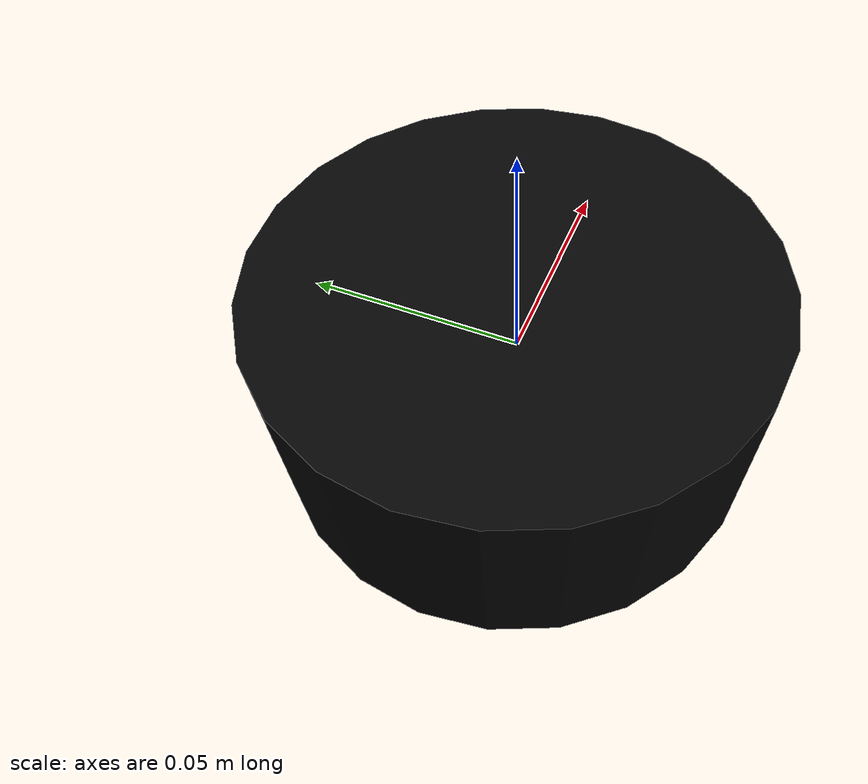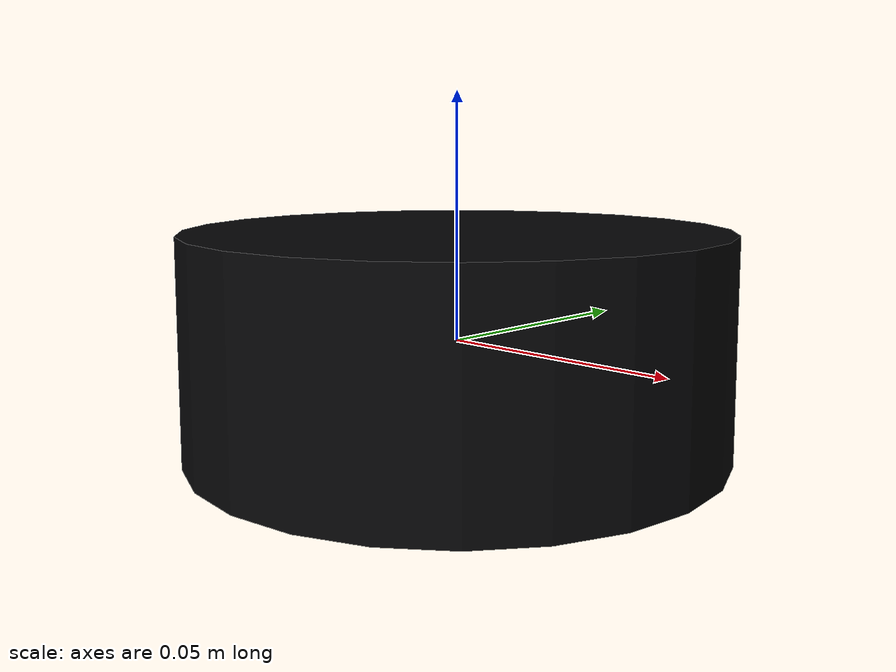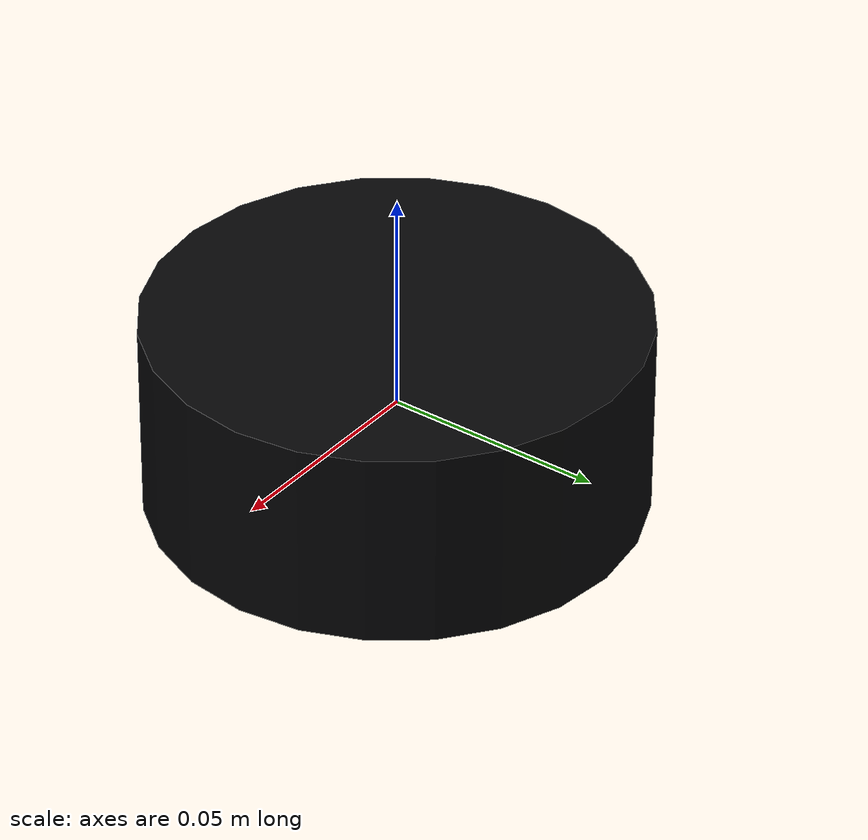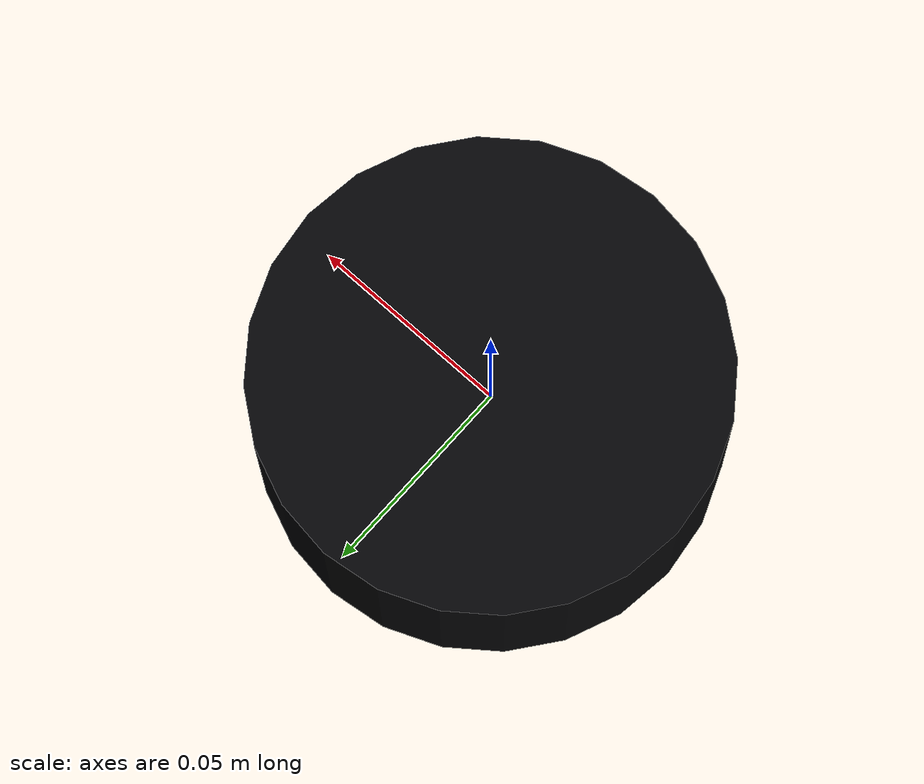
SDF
<?xml version="1.0"?>
<sdf version="1.10">
  <model name="lidar_downward_sensor_only">
    <static>false</static>
    <self_collide>false</self_collide>
    <link name="sensor_link">
      <gravity>false</gravity>
      <kinematic>true</kinematic>
      <visual name="lidar_body">
        <pose>0 0 0 0 0 0</pose>
        <geometry>
          <cylinder>
            <radius>0.055</radius>
            <length>0.045</length>
          </cylinder>
        </geometry>
        <material>
          <ambient>0.02 0.02 0.025 1</ambient>
          <diffuse>0.02 0.02 0.025 1</diffuse>
          <specular>0.15 0.15 0.15 1</specular>
        </material>
      </visual>
      <sensor name="downward_lidar" type="gpu_lidar">
        <!-- 传感器坐标系向下安装：扫描平面平行地面，用于观察无人机下方障碍物距离。 -->
        <pose>0 0 0 0 1.57079632679 0</pose>
        <always_on>1</always_on>
        <update_rate>20</update_rate>
        <visualize>true</visualize>
        <topic>/lidar/scan</topic>
        <lidar>
          <scan>
            <horizontal>
              <samples>360</samples>
              <resolution>1</resolution>
              <min_angle>-3.14159265</min_angle>
              <max_angle>3.14159265</max_angle>
            </horizontal>
            <vertical>
              <samples>1</samples>
              <resolution>1</resolution>
              <min_angle>0</min_angle>
              <max_angle>0</max_angle>
            </vertical>
          </scan>
          <range>
            <min>0.12</min>
            <max>20.0</max>
            <resolution>0.01</resolution>
          </range>
          <noise>
            <type>gaussian</type>
            <mean>0.0</mean>
            <stddev>0.01</stddev>
          </noise>
        </lidar>
      </sensor>
    </link>
  </model>
</sdf>
